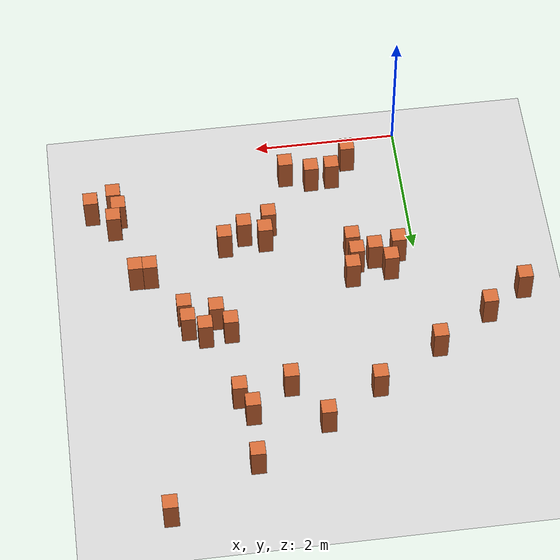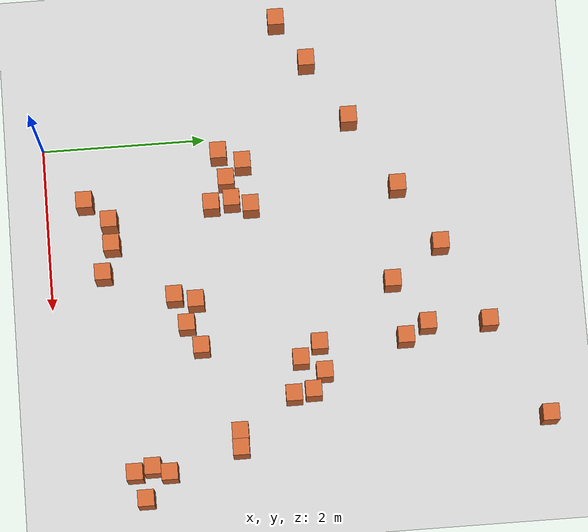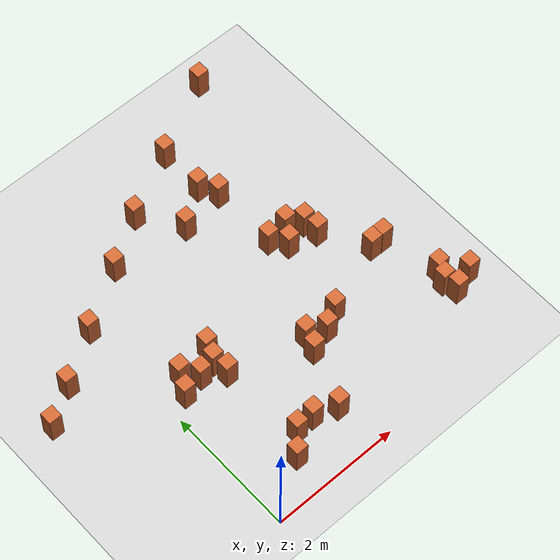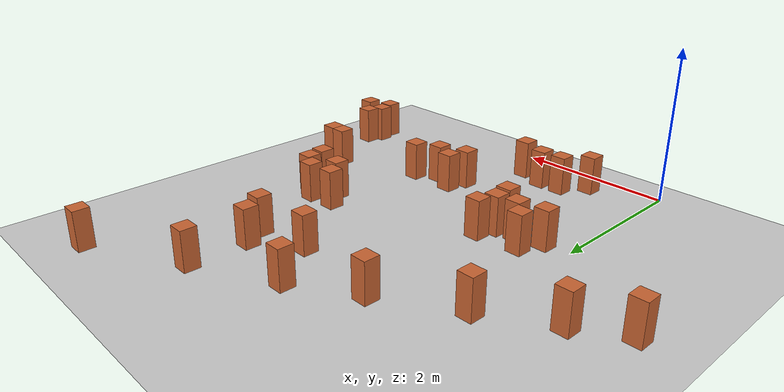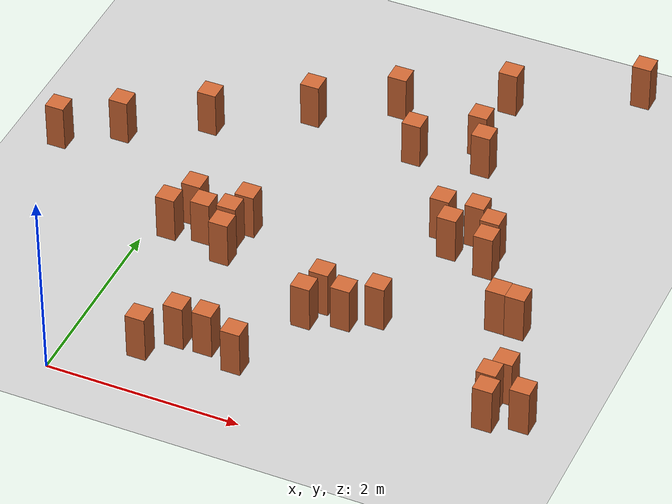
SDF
<sdf version="1.9">
 <world name="default">
  <model name="ground_plane">
   <static>true</static>
   <link name="link">
    <collision name="collision">
     <geometry><plane><normal>0 0 1</normal><size>100 100</size></plane></geometry>
     <surface><friction><ode><mu>100</mu><mu2>50</mu2></ode></friction></surface>
    </collision>
    <visual name="visual">
     <cast_shadows>false</cast_shadows>
     <geometry><plane><normal>0 0 1</normal><size>100 100</size></plane></geometry>
     <material>
      <ambient>0.6 0.6 0.6 1</ambient>
      <diffuse>0.8 0.8 0.8 1</diffuse>
      <specular>0.1 0.1 0.1 1</specular>
     </material>
    </visual>
    <inertial>
     <mass>1</mass>
     <inertia><ixx>1</ixx><ixy>0</ixy><ixz>0</ixz><iyy>1</iyy><iyz>0</iyz><izz>1</izz></inertia>
    </inertial>
   </link>
  </model>
  <model name="wood_cube_10cm_clone_0_clone_1">
   <link name="link">
    <pose>0 0 0.05 0 -0 0</pose>
    <inertial>
     <mass>0.51670000000000005</mass>
     <inertia>
      <ixx>0.00086116700000000003</ixx>
      <ixy>0</ixy>
      <ixz>0</ixz>
      <iyy>0.00086116700000000003</iyy>
      <iyz>0</iyz>
      <izz>0.00086116700000000003</izz>
     </inertia>
    </inertial>
    <collision name="collision">
     <geometry><box><size>0.2 0.2 0.5</size></box></geometry>
     <surface>
      <contact>
       <poissons_ratio>0.34699999999999998</poissons_ratio>
       <elastic_modulus>8800000000</elastic_modulus>
       <ode><kp>100000</kp><kd>100</kd><max_vel>100</max_vel><min_depth>0.001</min_depth></ode>
      </contact>
      <friction>
       <torsional>
        <coefficient>1</coefficient>
        <use_patch_radius>false</use_patch_radius>
        <surface_radius>0.01</surface_radius>
       </torsional>
      </friction>
     </surface>
    </collision>
    <visual name="visual">
     <geometry><box><size>0.2 0.2 0.5</size></box></geometry>
     <material>
      <ambient>0.6 0.3 0.1 1</ambient>
      <diffuse>0.8 0.4 0.2 1</diffuse>
      <specular>0.1 0.1 0.1 1</specular>
     </material>
    </visual>
   </link>
   <pose>1.30046 0.792033 0.25 0 0 -0</pose>
   <static>false</static>
  </model>
  <model name="wood_cube_10cm_clone_0_clone_2">
   <link name="link">
    <pose>0 0 0.05 0 -0 0</pose>
    <inertial>
     <mass>0.51670000000000005</mass>
     <inertia>
      <ixx>0.00086116700000000003</ixx>
      <ixy>0</ixy>
      <ixz>0</ixz>
      <iyy>0.00086116700000000003</iyy>
      <iyz>0</iyz>
      <izz>0.00086116700000000003</izz>
     </inertia>
    </inertial>
    <collision name="collision">
     <geometry><box><size>0.2 0.2 0.5</size></box></geometry>
     <surface>
      <contact>
       <poissons_ratio>0.34699999999999998</poissons_ratio>
       <elastic_modulus>8800000000</elastic_modulus>
       <ode><kp>100000</kp><kd>100</kd><max_vel>100</max_vel><min_depth>0.001</min_depth></ode>
      </contact>
      <friction>
       <torsional>
        <coefficient>1</coefficient>
        <use_patch_radius>false</use_patch_radius>
        <surface_radius>0.01</surface_radius>
       </torsional>
      </friction>
     </surface>
    </collision>
    <visual name="visual">
     <geometry><box><size>0.2 0.2 0.5</size></box></geometry>
     <material>
      <ambient>0.6 0.3 0.1 1</ambient>
      <diffuse>0.8 0.4 0.2 1</diffuse>
      <specular>0.1 0.1 0.1 1</specular>
     </material>
    </visual>
   </link>
   <pose>1.00724 0.77848 0.249999 0 -0 0</pose>
   <static>false</static>
  </model>
  <model name="wood_cube_10cm_clone_0_clone_4">
   <link name="link">
    <pose>0 0 0.05 0 -0 0</pose>
    <inertial>
     <mass>0.51670000000000005</mass>
     <inertia>
      <ixx>0.00086116700000000003</ixx>
      <ixy>0</ixy>
      <ixz>0</ixz>
      <iyy>0.00086116700000000003</iyy>
      <iyz>0</iyz>
      <izz>0.00086116700000000003</izz>
     </inertia>
    </inertial>
    <collision name="collision">
     <geometry><box><size>0.2 0.2 0.5</size></box></geometry>
     <surface>
      <contact>
       <poissons_ratio>0.34699999999999998</poissons_ratio>
       <elastic_modulus>8800000000</elastic_modulus>
       <ode><kp>100000</kp><kd>100</kd><max_vel>100</max_vel><min_depth>0.001</min_depth></ode>
      </contact>
      <friction>
       <torsional>
        <coefficient>1</coefficient>
        <use_patch_radius>false</use_patch_radius>
        <surface_radius>0.01</surface_radius>
       </torsional>
      </friction>
     </surface>
    </collision>
    <visual name="visual">
     <geometry><box><size>0.2 0.2 0.5</size></box></geometry>
     <material>
      <ambient>0.6 0.3 0.1 1</ambient>
      <diffuse>0.8 0.4 0.2 1</diffuse>
      <specular>0.1 0.1 0.1 1</specular>
     </material>
    </visual>
   </link>
   <pose>0.748848 0.49402 0.25 0 0 0</pose>
   <static>false</static>
  </model>
  <model name="wood_cube_10cm_clone_0_clone_5">
   <link name="link">
    <pose>0 0 0.05 0 -0 0</pose>
    <inertial>
     <mass>0.51670000000000005</mass>
     <inertia>
      <ixx>0.00086116700000000003</ixx>
      <ixy>0</ixy>
      <ixz>0</ixz>
      <iyy>0.00086116700000000003</iyy>
      <iyz>0</iyz>
      <izz>0.00086116700000000003</izz>
     </inertia>
    </inertial>
    <collision name="collision">
     <geometry><box><size>0.2 0.2 0.5</size></box></geometry>
     <surface>
      <contact>
       <poissons_ratio>0.34699999999999998</poissons_ratio>
       <elastic_modulus>8800000000</elastic_modulus>
       <ode><kp>100000</kp><kd>100</kd><max_vel>100</max_vel><min_depth>0.001</min_depth></ode>
      </contact>
      <friction>
       <torsional>
        <coefficient>1</coefficient>
        <use_patch_radius>false</use_patch_radius>
        <surface_radius>0.01</surface_radius>
       </torsional>
      </friction>
     </surface>
    </collision>
    <visual name="visual">
     <geometry><box><size>0.2 0.2 0.5</size></box></geometry>
     <material>
      <ambient>0.6 0.3 0.1 1</ambient>
      <diffuse>0.8 0.4 0.2 1</diffuse>
      <specular>0.1 0.1 0.1 1</specular>
     </material>
    </visual>
   </link>
   <pose>1.65238 0.667249 0.249999 0 0 0</pose>
   <static>false</static>
  </model>
  <model name="wood_cube_10cm_clone_0_clone_4_14">
   <link name="link">
    <pose>0 0 0.05 0 -0 0</pose>
    <inertial>
     <mass>0.51670000000000005</mass>
     <inertia>
      <ixx>0.00086116700000000003</ixx>
      <ixy>0</ixy>
      <ixz>0</ixz>
      <iyy>0.00086116700000000003</iyy>
      <iyz>0</iyz>
      <izz>0.00086116700000000003</izz>
     </inertia>
    </inertial>
    <collision name="collision">
     <geometry><box><size>0.2 0.2 0.5</size></box></geometry>
     <surface>
      <contact>
       <poissons_ratio>0.34699999999999998</poissons_ratio>
       <elastic_modulus>8800000000</elastic_modulus>
       <ode><kp>100000</kp><kd>100</kd><max_vel>100</max_vel><min_depth>0.001</min_depth></ode>
      </contact>
      <friction>
       <torsional>
        <coefficient>1</coefficient>
        <use_patch_radius>false</use_patch_radius>
        <surface_radius>0.01</surface_radius>
       </torsional>
      </friction>
     </surface>
    </collision>
    <visual name="visual">
     <geometry><box><size>0.2 0.2 0.5</size></box></geometry>
     <material>
      <ambient>0.6 0.3 0.1 1</ambient>
      <diffuse>0.8 0.4 0.2 1</diffuse>
      <specular>0.1 0.1 0.1 1</specular>
     </material>
    </visual>
   </link>
   <pose>2.63298 1.79794 0.249999 -0 0 -0</pose>
   <static>false</static>
  </model>
  <model name="wood_cube_10cm_clone_0_clone_4_15">
   <link name="link">
    <pose>0 0 0.05 0 -0 0</pose>
    <inertial>
     <mass>0.51670000000000005</mass>
     <inertia>
      <ixx>0.00086116700000000003</ixx>
      <ixy>0</ixy>
      <ixz>0</ixz>
      <iyy>0.00086116700000000003</iyy>
      <iyz>0</iyz>
      <izz>0.00086116700000000003</izz>
     </inertia>
    </inertial>
    <collision name="collision">
     <geometry><box><size>0.2 0.2 0.5</size></box></geometry>
     <surface>
      <contact>
       <poissons_ratio>0.34699999999999998</poissons_ratio>
       <elastic_modulus>8800000000</elastic_modulus>
       <ode><kp>100000</kp><kd>100</kd><max_vel>100</max_vel><min_depth>0.001</min_depth></ode>
      </contact>
      <friction>
       <torsional>
        <coefficient>1</coefficient>
        <use_patch_radius>false</use_patch_radius>
        <surface_radius>0.01</surface_radius>
       </torsional>
      </friction>
     </surface>
    </collision>
    <visual name="visual">
     <geometry><box><size>0.2 0.2 0.5</size></box></geometry>
     <material>
      <ambient>0.6 0.3 0.1 1</ambient>
      <diffuse>0.8 0.4 0.2 1</diffuse>
      <specular>0.1 0.1 0.1 1</specular>
     </material>
    </visual>
   </link>
   <pose>2.34569 1.63991 0.249999 -0 0 -0</pose>
   <static>false</static>
  </model>
  <model name="wood_cube_10cm_clone_0_clone_4_16">
   <link name="link">
    <pose>0 0 0.05 0 -0 0</pose>
    <inertial>
     <mass>0.51670000000000005</mass>
     <inertia>
      <ixx>0.00086116700000000003</ixx>
      <ixy>0</ixy>
      <ixz>0</ixz>
      <iyy>0.00086116700000000003</iyy>
      <iyz>0</iyz>
      <izz>0.00086116700000000003</izz>
     </inertia>
    </inertial>
    <collision name="collision">
     <geometry><box><size>0.2 0.2 0.5</size></box></geometry>
     <surface>
      <contact>
       <poissons_ratio>0.34699999999999998</poissons_ratio>
       <elastic_modulus>8800000000</elastic_modulus>
       <ode><kp>100000</kp><kd>100</kd><max_vel>100</max_vel><min_depth>0.001</min_depth></ode>
      </contact>
      <friction>
       <torsional>
        <coefficient>1</coefficient>
        <use_patch_radius>false</use_patch_radius>
        <surface_radius>0.01</surface_radius>
       </torsional>
      </friction>
     </surface>
    </collision>
    <visual name="visual">
     <geometry><box><size>0.2 0.2 0.5</size></box></geometry>
     <material>
      <ambient>0.6 0.3 0.1 1</ambient>
      <diffuse>0.8 0.4 0.2 1</diffuse>
      <specular>0.1 0.1 0.1 1</specular>
     </material>
    </visual>
   </link>
   <pose>2.06317 1.76945 0.249999 -0 0 -0</pose>
   <static>false</static>
  </model>
  <model name="wood_cube_10cm_clone_0_clone_4_17">
   <link name="link">
    <pose>0 0 0.05 0 -0 0</pose>
    <inertial>
     <mass>0.51670000000000005</mass>
     <inertia>
      <ixx>0.00086116700000000003</ixx>
      <ixy>0</ixy>
      <ixz>0</ixz>
      <iyy>0.00086116700000000003</iyy>
      <iyz>0</iyz>
      <izz>0.00086116700000000003</izz>
     </inertia>
    </inertial>
    <collision name="collision">
     <geometry><box><size>0.2 0.2 0.5</size></box></geometry>
     <surface>
      <contact>
       <poissons_ratio>0.34699999999999998</poissons_ratio>
       <elastic_modulus>8800000000</elastic_modulus>
       <ode><kp>100000</kp><kd>100</kd><max_vel>100</max_vel><min_depth>0.001</min_depth></ode>
      </contact>
      <friction>
       <torsional>
        <coefficient>1</coefficient>
        <use_patch_radius>false</use_patch_radius>
        <surface_radius>0.01</surface_radius>
       </torsional>
      </friction>
     </surface>
    </collision>
    <visual name="visual">
     <geometry><box><size>0.2 0.2 0.5</size></box></geometry>
     <material>
      <ambient>0.6 0.3 0.1 1</ambient>
      <diffuse>0.8 0.4 0.2 1</diffuse>
      <specular>0.1 0.1 0.1 1</specular>
     </material>
    </visual>
   </link>
   <pose>1.98706 1.51306 0.249999 -0 0 -0</pose>
   <static>false</static>
  </model>
  <model name="wood_cube_10cm_clone_0_clone_4_18">
   <link name="link">
    <pose>0 0 0.05 0 -0 0</pose>
    <inertial>
     <mass>0.51670000000000005</mass>
     <inertia>
      <ixx>0.00086116700000000003</ixx>
      <ixy>0</ixy>
      <ixz>0</ixz>
      <iyy>0.00086116700000000003</iyy>
      <iyz>0</iyz>
      <izz>0.00086116700000000003</izz>
     </inertia>
    </inertial>
    <collision name="collision">
     <geometry><box><size>0.2 0.2 0.5</size></box></geometry>
     <surface>
      <contact>
       <poissons_ratio>0.34699999999999998</poissons_ratio>
       <elastic_modulus>8800000000</elastic_modulus>
       <ode><kp>100000</kp><kd>100</kd><max_vel>100</max_vel><min_depth>0.001</min_depth></ode>
      </contact>
      <friction>
       <torsional>
        <coefficient>1</coefficient>
        <use_patch_radius>false</use_patch_radius>
        <surface_radius>0.01</surface_radius>
       </torsional>
      </friction>
     </surface>
    </collision>
    <visual name="visual">
     <geometry><box><size>0.2 0.2 0.5</size></box></geometry>
     <material>
      <ambient>0.6 0.3 0.1 1</ambient>
      <diffuse>0.8 0.4 0.2 1</diffuse>
      <specular>0.1 0.1 0.1 1</specular>
     </material>
    </visual>
   </link>
   <pose>4.05339 1.11591 0.25 0 -0 -8e-06</pose>
   <static>false</static>
  </model>
  <model name="wood_cube_10cm_clone_0_clone_4_19">
   <link name="link">
    <pose>0 0 0.05 0 -0 0</pose>
    <inertial>
     <mass>0.51670000000000005</mass>
     <inertia>
      <ixx>0.00086116700000000003</ixx>
      <ixy>0</ixy>
      <ixz>0</ixz>
      <iyy>0.00086116700000000003</iyy>
      <iyz>0</iyz>
      <izz>0.00086116700000000003</izz>
     </inertia>
    </inertial>
    <collision name="collision">
     <geometry><box><size>0.2 0.2 0.5</size></box></geometry>
     <surface>
      <contact>
       <poissons_ratio>0.34699999999999998</poissons_ratio>
       <elastic_modulus>8800000000</elastic_modulus>
       <ode><kp>100000</kp><kd>100</kd><max_vel>100</max_vel><min_depth>0.001</min_depth></ode>
      </contact>
      <friction>
       <torsional>
        <coefficient>1</coefficient>
        <use_patch_radius>false</use_patch_radius>
        <surface_radius>0.01</surface_radius>
       </torsional>
      </friction>
     </surface>
    </collision>
    <visual name="visual">
     <geometry><box><size>0.2 0.2 0.5</size></box></geometry>
     <material>
      <ambient>0.6 0.3 0.1 1</ambient>
      <diffuse>0.8 0.4 0.2 1</diffuse>
      <specular>0.1 0.1 0.1 1</specular>
     </material>
    </visual>
   </link>
   <pose>4.4321 1.01298 0.249999 -0 -0 -0</pose>
   <static>false</static>
  </model>
  <model name="wood_cube_10cm_clone_0_clone_4_20">
   <link name="link">
    <pose>0 0 0.05 0 -0 0</pose>
    <inertial>
     <mass>0.51670000000000005</mass>
     <inertia>
      <ixx>0.00086116700000000003</ixx>
      <ixy>0</ixy>
      <ixz>0</ixz>
      <iyy>0.00086116700000000003</iyy>
      <iyz>0</iyz>
      <izz>0.00086116700000000003</izz>
     </inertia>
    </inertial>
    <collision name="collision">
     <geometry><box><size>0.2 0.2 0.5</size></box></geometry>
     <surface>
      <contact>
       <poissons_ratio>0.34699999999999998</poissons_ratio>
       <elastic_modulus>8800000000</elastic_modulus>
       <ode><kp>100000</kp><kd>100</kd><max_vel>100</max_vel><min_depth>0.001</min_depth></ode>
      </contact>
      <friction>
       <torsional>
        <coefficient>1</coefficient>
        <use_patch_radius>false</use_patch_radius>
        <surface_radius>0.01</surface_radius>
       </torsional>
      </friction>
     </surface>
    </collision>
    <visual name="visual">
     <geometry><box><size>0.2 0.2 0.5</size></box></geometry>
     <material>
      <ambient>0.6 0.3 0.1 1</ambient>
      <diffuse>0.8 0.4 0.2 1</diffuse>
      <specular>0.1 0.1 0.1 1</specular>
     </material>
    </visual>
   </link>
   <pose>4.109 0.897253 0.249999 -0 -0 -0</pose>
   <static>false</static>
  </model>
  <model name="wood_cube_10cm_clone_0_clone_4_22">
   <link name="link">
    <pose>0 0 0.05 0 -0 0</pose>
    <inertial>
     <mass>0.51670000000000005</mass>
     <inertia>
      <ixx>0.00086116700000000003</ixx>
      <ixy>0</ixy>
      <ixz>0</ixz>
      <iyy>0.00086116700000000003</iyy>
      <iyz>0</iyz>
      <izz>0.00086116700000000003</izz>
     </inertia>
    </inertial>
    <collision name="collision">
     <geometry><box><size>0.2 0.2 0.5</size></box></geometry>
     <surface>
      <contact>
       <poissons_ratio>0.34699999999999998</poissons_ratio>
       <elastic_modulus>8800000000</elastic_modulus>
       <ode><kp>100000</kp><kd>100</kd><max_vel>100</max_vel><min_depth>0.001</min_depth></ode>
      </contact>
      <friction>
       <torsional>
        <coefficient>1</coefficient>
        <use_patch_radius>false</use_patch_radius>
        <surface_radius>0.01</surface_radius>
       </torsional>
      </friction>
     </surface>
    </collision>
    <visual name="visual">
     <geometry><box><size>0.2 0.2 0.5</size></box></geometry>
     <material>
      <ambient>0.6 0.3 0.1 1</ambient>
      <diffuse>0.8 0.4 0.2 1</diffuse>
      <specular>0.1 0.1 0.1 1</specular>
     </material>
    </visual>
   </link>
   <pose>4.13615 1.31591 0.25 -0 0 -7e-06</pose>
   <static>false</static>
  </model>
  <model name="wood_cube_10cm_clone_0_clone_4_46">
   <link name="link">
    <pose>0 0 0.05 0 -0 0</pose>
    <inertial>
     <mass>0.51670000000000005</mass>
     <inertia>
      <ixx>0.00086116700000000003</ixx>
      <ixy>0</ixy>
      <ixz>0</ixz>
      <iyy>0.00086116700000000003</iyy>
      <iyz>0</iyz>
      <izz>0.00086116700000000003</izz>
     </inertia>
    </inertial>
    <collision name="collision">
     <geometry><box><size>0.2 0.2 0.5</size></box></geometry>
     <surface>
      <contact>
       <poissons_ratio>0.34699999999999998</poissons_ratio>
       <elastic_modulus>8800000000</elastic_modulus>
       <ode><kp>100000</kp><kd>100</kd><max_vel>100</max_vel><min_depth>0.001</min_depth></ode>
      </contact>
      <friction>
       <torsional>
        <coefficient>1</coefficient>
        <use_patch_radius>false</use_patch_radius>
        <surface_radius>0.01</surface_radius>
       </torsional>
      </friction>
     </surface>
    </collision>
    <visual name="visual">
     <geometry><box><size>0.2 0.2 0.5</size></box></geometry>
     <material>
      <ambient>0.6 0.3 0.1 1</ambient>
      <diffuse>0.8 0.4 0.2 1</diffuse>
      <specular>0.1 0.1 0.1 1</specular>
     </material>
    </visual>
   </link>
   <pose>0.851003 2.28651 0.249999 0 -0 -0</pose>
   <static>false</static>
  </model>
  <model name="wood_cube_10cm_clone_0_clone_4_47">
   <link name="link">
    <pose>0 0 0.05 0 -0 0</pose>
    <inertial>
     <mass>0.51670000000000005</mass>
     <inertia>
      <ixx>0.00086116700000000003</ixx>
      <ixy>0</ixy>
      <ixz>0</ixz>
      <iyy>0.00086116700000000003</iyy>
      <iyz>0</iyz>
      <izz>0.00086116700000000003</izz>
     </inertia>
    </inertial>
    <collision name="collision">
     <geometry><box><size>0.2 0.2 0.5</size></box></geometry>
     <surface>
      <contact>
       <poissons_ratio>0.34699999999999998</poissons_ratio>
       <elastic_modulus>8800000000</elastic_modulus>
       <ode><kp>100000</kp><kd>100</kd><max_vel>100</max_vel><min_depth>0.001</min_depth></ode>
      </contact>
      <friction>
       <torsional>
        <coefficient>1</coefficient>
        <use_patch_radius>false</use_patch_radius>
        <surface_radius>0.01</surface_radius>
       </torsional>
      </friction>
     </surface>
    </collision>
    <visual name="visual">
     <geometry><box><size>0.2 0.2 0.5</size></box></geometry>
     <material>
      <ambient>0.6 0.3 0.1 1</ambient>
      <diffuse>0.8 0.4 0.2 1</diffuse>
      <specular>0.1 0.1 0.1 1</specular>
     </material>
    </visual>
   </link>
   <pose>0.591517 2.23791 0.249999 0 0 -0</pose>
   <static>false</static>
  </model>
  <model name="wood_cube_10cm_clone_0_clone_4_48">
   <link name="link">
    <pose>0 0 0.05 0 -0 0</pose>
    <inertial>
     <mass>0.51670000000000005</mass>
     <inertia>
      <ixx>0.00086116700000000003</ixx>
      <ixy>0</ixy>
      <ixz>0</ixz>
      <iyy>0.00086116700000000003</iyy>
      <iyz>0</iyz>
      <izz>0.00086116700000000003</izz>
     </inertia>
    </inertial>
    <collision name="collision">
     <geometry><box><size>0.2 0.2 0.5</size></box></geometry>
     <surface>
      <contact>
       <poissons_ratio>0.34699999999999998</poissons_ratio>
       <elastic_modulus>8800000000</elastic_modulus>
       <ode><kp>100000</kp><kd>100</kd><max_vel>100</max_vel><min_depth>0.001</min_depth></ode>
      </contact>
      <friction>
       <torsional>
        <coefficient>1</coefficient>
        <use_patch_radius>false</use_patch_radius>
        <surface_radius>0.01</surface_radius>
       </torsional>
      </friction>
     </surface>
    </collision>
    <visual name="visual">
     <geometry><box><size>0.2 0.2 0.5</size></box></geometry>
     <material>
      <ambient>0.6 0.3 0.1 1</ambient>
      <diffuse>0.8 0.4 0.2 1</diffuse>
      <specular>0.1 0.1 0.1 1</specular>
     </material>
    </visual>
   </link>
   <pose>0.883771 2.03562 0.249999 0 -0 -0</pose>
   <static>false</static>
  </model>
  <model name="wood_cube_10cm_clone_0_clone_4_49">
   <link name="link">
    <pose>0 0 0.05 0 -0 0</pose>
    <inertial>
     <mass>0.51670000000000005</mass>
     <inertia>
      <ixx>0.00086116700000000003</ixx>
      <ixy>0</ixy>
      <ixz>0</ixz>
      <iyy>0.00086116700000000003</iyy>
      <iyz>0</iyz>
      <izz>0.00086116700000000003</izz>
     </inertia>
    </inertial>
    <collision name="collision">
     <geometry><box><size>0.2 0.2 0.5</size></box></geometry>
     <surface>
      <contact>
       <poissons_ratio>0.34699999999999998</poissons_ratio>
       <elastic_modulus>8800000000</elastic_modulus>
       <ode><kp>100000</kp><kd>100</kd><max_vel>100</max_vel><min_depth>0.001</min_depth></ode>
      </contact>
      <friction>
       <torsional>
        <coefficient>1</coefficient>
        <use_patch_radius>false</use_patch_radius>
        <surface_radius>0.01</surface_radius>
       </torsional>
      </friction>
     </surface>
    </collision>
    <visual name="visual">
     <geometry><box><size>0.2 0.2 0.5</size></box></geometry>
     <material>
      <ambient>0.6 0.3 0.1 1</ambient>
      <diffuse>0.8 0.4 0.2 1</diffuse>
      <specular>0.1 0.1 0.1 1</specular>
     </material>
    </visual>
   </link>
   <pose>0.251594 2.16555 0.249999 0 -0 -0</pose>
   <static>false</static>
  </model>
  <model name="wood_cube_10cm_clone_0_clone_4_50">
   <link name="link">
    <pose>0 0 0.05 0 -0 0</pose>
    <inertial>
     <mass>0.51670000000000005</mass>
     <inertia>
      <ixx>0.00086116700000000003</ixx>
      <ixy>0</ixy>
      <ixz>0</ixz>
      <iyy>0.00086116700000000003</iyy>
      <iyz>0</iyz>
      <izz>0.00086116700000000003</izz>
     </inertia>
    </inertial>
    <collision name="collision">
     <geometry><box><size>0.2 0.2 0.5</size></box></geometry>
     <surface>
      <contact>
       <poissons_ratio>0.34699999999999998</poissons_ratio>
       <elastic_modulus>8800000000</elastic_modulus>
       <ode><kp>100000</kp><kd>100</kd><max_vel>100</max_vel><min_depth>0.001</min_depth></ode>
      </contact>
      <friction>
       <torsional>
        <coefficient>1</coefficient>
        <use_patch_radius>false</use_patch_radius>
        <surface_radius>0.01</surface_radius>
       </torsional>
      </friction>
     </surface>
    </collision>
    <visual name="visual">
     <geometry><box><size>0.2 0.2 0.5</size></box></geometry>
     <material>
      <ambient>0.6 0.3 0.1 1</ambient>
      <diffuse>0.8 0.4 0.2 1</diffuse>
      <specular>0.1 0.1 0.1 1</specular>
     </material>
    </visual>
   </link>
   <pose>0.394325 2.45351 0.249999 0 -0 -0</pose>
   <static>false</static>
  </model>
  <model name="wood_cube_10cm_clone_0_clone_4_51">
   <link name="link">
    <pose>0 0 0.05 0 -0 0</pose>
    <inertial>
     <mass>0.51670000000000005</mass>
     <inertia>
      <ixx>0.00086116700000000003</ixx>
      <ixy>0</ixy>
      <ixz>0</ixz>
      <iyy>0.00086116700000000003</iyy>
      <iyz>0</iyz>
      <izz>0.00086116700000000003</izz>
     </inertia>
    </inertial>
    <collision name="collision">
     <geometry><box><size>0.2 0.2 0.5</size></box></geometry>
     <surface>
      <contact>
       <poissons_ratio>0.34699999999999998</poissons_ratio>
       <elastic_modulus>8800000000</elastic_modulus>
       <ode><kp>100000</kp><kd>100</kd><max_vel>100</max_vel><min_depth>0.001</min_depth></ode>
      </contact>
      <friction>
       <torsional>
        <coefficient>1</coefficient>
        <use_patch_radius>false</use_patch_radius>
        <surface_radius>0.01</surface_radius>
       </torsional>
      </friction>
     </surface>
    </collision>
    <visual name="visual">
     <geometry><box><size>0.2 0.2 0.5</size></box></geometry>
     <material>
      <ambient>0.6 0.3 0.1 1</ambient>
      <diffuse>0.8 0.4 0.2 1</diffuse>
      <specular>0.1 0.1 0.1 1</specular>
     </material>
    </visual>
   </link>
   <pose>0.936904 2.51662 0.249999 -0 0 -0</pose>
   <static>false</static>
  </model>
  <model name="wood_cube_10cm_clone_0_clone_4_52">
   <link name="link">
    <pose>0 0 0.05 0 -0 0</pose>
    <inertial>
     <mass>0.51670000000000005</mass>
     <inertia>
      <ixx>0.00086116700000000003</ixx>
      <ixy>0</ixy>
      <ixz>0</ixz>
      <iyy>0.00086116700000000003</iyy>
      <iyz>0</iyz>
      <izz>0.00086116700000000003</izz>
     </inertia>
    </inertial>
    <collision name="collision">
     <geometry><box><size>0.2 0.2 0.5</size></box></geometry>
     <surface>
      <contact>
       <poissons_ratio>0.34699999999999998</poissons_ratio>
       <elastic_modulus>8800000000</elastic_modulus>
       <ode><kp>100000</kp><kd>100</kd><max_vel>100</max_vel><min_depth>0.001</min_depth></ode>
      </contact>
      <friction>
       <torsional>
        <coefficient>1</coefficient>
        <use_patch_radius>false</use_patch_radius>
        <surface_radius>0.01</surface_radius>
       </torsional>
      </friction>
     </surface>
    </collision>
    <visual name="visual">
     <geometry><box><size>0.2 0.2 0.5</size></box></geometry>
     <material>
      <ambient>0.6 0.3 0.1 1</ambient>
      <diffuse>0.8 0.4 0.2 1</diffuse>
      <specular>0.1 0.1 0.1 1</specular>
     </material>
    </visual>
   </link>
   <pose>3.26592 3.1135 0.249999 -0 0 -0</pose>
   <static>false</static>
  </model>
  <model name="wood_cube_10cm_clone_0_clone_4_53">
   <link name="link">
    <pose>0 0 0.05 0 -0 0</pose>
    <inertial>
     <mass>0.51670000000000005</mass>
     <inertia>
      <ixx>0.00086116700000000003</ixx>
      <ixy>0</ixy>
      <ixz>0</ixz>
      <iyy>0.00086116700000000003</iyy>
      <iyz>0</iyz>
      <izz>0.00086116700000000003</izz>
     </inertia>
    </inertial>
    <collision name="collision">
     <geometry><box><size>0.2 0.2 0.5</size></box></geometry>
     <surface>
      <contact>
       <poissons_ratio>0.34699999999999998</poissons_ratio>
       <elastic_modulus>8800000000</elastic_modulus>
       <ode><kp>100000</kp><kd>100</kd><max_vel>100</max_vel><min_depth>0.001</min_depth></ode>
      </contact>
      <friction>
       <torsional>
        <coefficient>1</coefficient>
        <use_patch_radius>false</use_patch_radius>
        <surface_radius>0.01</surface_radius>
       </torsional>
      </friction>
     </surface>
    </collision>
    <visual name="visual">
     <geometry><box><size>0.2 0.2 0.5</size></box></geometry>
     <material>
      <ambient>0.6 0.3 0.1 1</ambient>
      <diffuse>0.8 0.4 0.2 1</diffuse>
      <specular>0.1 0.1 0.1 1</specular>
     </material>
    </visual>
   </link>
   <pose>3.04552 3.2644 0.249999 -0 0 -0</pose>
   <static>false</static>
  </model>
  <model name="wood_cube_10cm_clone_0_clone_4_54">
   <link name="link">
    <pose>0 0 0.05 0 -0 0</pose>
    <inertial>
     <mass>0.51670000000000005</mass>
     <inertia>
      <ixx>0.00086116700000000003</ixx>
      <ixy>0</ixy>
      <ixz>0</ixz>
      <iyy>0.00086116700000000003</iyy>
      <iyz>0</iyz>
      <izz>0.00086116700000000003</izz>
     </inertia>
    </inertial>
    <collision name="collision">
     <geometry><box><size>0.2 0.2 0.5</size></box></geometry>
     <surface>
      <contact>
       <poissons_ratio>0.34699999999999998</poissons_ratio>
       <elastic_modulus>8800000000</elastic_modulus>
       <ode><kp>100000</kp><kd>100</kd><max_vel>100</max_vel><min_depth>0.001</min_depth></ode>
      </contact>
      <friction>
       <torsional>
        <coefficient>1</coefficient>
        <use_patch_radius>false</use_patch_radius>
        <surface_radius>0.01</surface_radius>
       </torsional>
      </friction>
     </surface>
    </collision>
    <visual name="visual">
     <geometry><box><size>0.2 0.2 0.5</size></box></geometry>
     <material>
      <ambient>0.6 0.3 0.1 1</ambient>
      <diffuse>0.8 0.4 0.2 1</diffuse>
      <specular>0.1 0.1 0.1 1</specular>
     </material>
    </visual>
   </link>
   <pose>2.86828 2.98839 0.249999 -0 0 -0</pose>
   <static>false</static>
  </model>
  <model name="wood_cube_10cm_clone_0_clone_4_55">
   <link name="link">
    <pose>0 0 0.05 0 -0 0</pose>
    <inertial>
     <mass>0.51670000000000005</mass>
     <inertia>
      <ixx>0.00086116700000000003</ixx>
      <ixy>0</ixy>
      <ixz>0</ixz>
      <iyy>0.00086116700000000003</iyy>
      <iyz>0</iyz>
      <izz>0.00086116700000000003</izz>
     </inertia>
    </inertial>
    <collision name="collision">
     <geometry><box><size>0.2 0.2 0.5</size></box></geometry>
     <surface>
      <contact>
       <poissons_ratio>0.34699999999999998</poissons_ratio>
       <elastic_modulus>8800000000</elastic_modulus>
       <ode><kp>100000</kp><kd>100</kd><max_vel>100</max_vel><min_depth>0.001</min_depth></ode>
      </contact>
      <friction>
       <torsional>
        <coefficient>1</coefficient>
        <use_patch_radius>false</use_patch_radius>
        <surface_radius>0.01</surface_radius>
       </torsional>
      </friction>
     </surface>
    </collision>
    <visual name="visual">
     <geometry><box><size>0.2 0.2 0.5</size></box></geometry>
     <material>
      <ambient>0.6 0.3 0.1 1</ambient>
      <diffuse>0.8 0.4 0.2 1</diffuse>
      <specular>0.1 0.1 0.1 1</specular>
     </material>
    </visual>
   </link>
   <pose>2.69498 3.22724 0.249999 -0 0 -0</pose>
   <static>false</static>
  </model>
  <model name="wood_cube_10cm_clone_0_clone_4_56">
   <link name="link">
    <pose>0 0 0.05 0 -0 0</pose>
    <inertial>
     <mass>0.51670000000000005</mass>
     <inertia>
      <ixx>0.00086116700000000003</ixx>
      <ixy>0</ixy>
      <ixz>0</ixz>
      <iyy>0.00086116700000000003</iyy>
      <iyz>0</iyz>
      <izz>0.00086116700000000003</izz>
     </inertia>
    </inertial>
    <collision name="collision">
     <geometry><box><size>0.2 0.2 0.5</size></box></geometry>
     <surface>
      <contact>
       <poissons_ratio>0.34699999999999998</poissons_ratio>
       <elastic_modulus>8800000000</elastic_modulus>
       <ode><kp>100000</kp><kd>100</kd><max_vel>100</max_vel><min_depth>0.001</min_depth></ode>
      </contact>
      <friction>
       <torsional>
        <coefficient>1</coefficient>
        <use_patch_radius>false</use_patch_radius>
        <surface_radius>0.01</surface_radius>
       </torsional>
      </friction>
     </surface>
    </collision>
    <visual name="visual">
     <geometry><box><size>0.2 0.2 0.5</size></box></geometry>
     <material>
      <ambient>0.6 0.3 0.1 1</ambient>
      <diffuse>0.8 0.4 0.2 1</diffuse>
      <specular>0.1 0.1 0.1 1</specular>
     </material>
    </visual>
   </link>
   <pose>3.29722 2.87551 0.249999 -0 0 -0</pose>
   <static>false</static>
  </model>
  <model name="wood_cube_10cm_clone_0_clone_4_44_7">
   <link name="link">
    <pose>0 0 0.05 0 -0 0</pose>
    <inertial>
     <mass>0.51670000000000005</mass>
     <inertia>
      <ixx>0.00086116700000000003</ixx>
      <ixy>0</ixy>
      <ixz>0</ixz>
      <iyy>0.00086116700000000003</iyy>
      <iyz>0</iyz>
      <izz>0.00086116700000000003</izz>
     </inertia>
    </inertial>
    <collision name="collision">
     <geometry><box><size>0.2 0.2 0.5</size></box></geometry>
     <surface>
      <contact>
       <poissons_ratio>0.34699999999999998</poissons_ratio>
       <elastic_modulus>8800000000</elastic_modulus>
       <ode><kp>100000</kp><kd>100</kd><max_vel>100</max_vel><min_depth>0.001</min_depth></ode>
      </contact>
      <friction>
       <torsional>
        <coefficient>1</coefficient>
        <use_patch_radius>false</use_patch_radius>
        <surface_radius>0.01</surface_radius>
       </torsional>
      </friction>
     </surface>
    </collision>
    <visual name="visual">
     <geometry><box><size>0.2 0.2 0.5</size></box></geometry>
     <material>
      <ambient>0.6 0.3 0.1 1</ambient>
      <diffuse>0.8 0.4 0.2 1</diffuse>
      <specular>0.1 0.1 0.1 1</specular>
     </material>
    </visual>
   </link>
   <pose>-1.37026 2.98855 0.249999 -0 -0 -0</pose>
   <static>false</static>
  </model>
  <model name="wood_cube_10cm_clone_0_clone_4_44_8">
   <link name="link">
    <pose>0 0 0.05 0 -0 0</pose>
    <inertial>
     <mass>0.51670000000000005</mass>
     <inertia>
      <ixx>0.00086116700000000003</ixx>
      <ixy>0</ixy>
      <ixz>0</ixz>
      <iyy>0.00086116700000000003</iyy>
      <iyz>0</iyz>
      <izz>0.00086116700000000003</izz>
     </inertia>
    </inertial>
    <collision name="collision">
     <geometry><box><size>0.2 0.2 0.5</size></box></geometry>
     <surface>
      <contact>
       <poissons_ratio>0.34699999999999998</poissons_ratio>
       <elastic_modulus>8800000000</elastic_modulus>
       <ode><kp>100000</kp><kd>100</kd><max_vel>100</max_vel><min_depth>0.001</min_depth></ode>
      </contact>
      <friction>
       <torsional>
        <coefficient>1</coefficient>
        <use_patch_radius>false</use_patch_radius>
        <surface_radius>0.01</surface_radius>
       </torsional>
      </friction>
     </surface>
    </collision>
    <visual name="visual">
     <geometry><box><size>0.2 0.2 0.5</size></box></geometry>
     <material>
      <ambient>0.6 0.3 0.1 1</ambient>
      <diffuse>0.8 0.4 0.2 1</diffuse>
      <specular>0.1 0.1 0.1 1</specular>
     </material>
    </visual>
   </link>
   <pose>-0.831275 3.32597 0.249999 0 -0 0</pose>
   <static>false</static>
  </model>
  <model name="wood_cube_10cm_clone_0_clone_4_44_9">
   <link name="link">
    <pose>0 0 0.05 0 -0 0</pose>
    <inertial>
     <mass>0.51670000000000005</mass>
     <inertia>
      <ixx>0.00086116700000000003</ixx>
      <ixy>0</ixy>
      <ixz>0</ixz>
      <iyy>0.00086116700000000003</iyy>
      <iyz>0</iyz>
      <izz>0.00086116700000000003</izz>
     </inertia>
    </inertial>
    <collision name="collision">
     <geometry><box><size>0.2 0.2 0.5</size></box></geometry>
     <surface>
      <contact>
       <poissons_ratio>0.34699999999999998</poissons_ratio>
       <elastic_modulus>8800000000</elastic_modulus>
       <ode><kp>100000</kp><kd>100</kd><max_vel>100</max_vel><min_depth>0.001</min_depth></ode>
      </contact>
      <friction>
       <torsional>
        <coefficient>1</coefficient>
        <use_patch_radius>false</use_patch_radius>
        <surface_radius>0.01</surface_radius>
       </torsional>
      </friction>
     </surface>
    </collision>
    <visual name="visual">
     <geometry><box><size>0.2 0.2 0.5</size></box></geometry>
     <material>
      <ambient>0.6 0.3 0.1 1</ambient>
      <diffuse>0.8 0.4 0.2 1</diffuse>
      <specular>0.1 0.1 0.1 1</specular>
     </material>
    </visual>
   </link>
   <pose>-0.075502 3.79145 0.249999 -0 -0 0</pose>
   <static>false</static>
  </model>
  <model name="wood_cube_10cm_clone_0_clone_4_44_10">
   <link name="link">
    <pose>0 0 0.05 0 -0 0</pose>
    <inertial>
     <mass>0.51670000000000005</mass>
     <inertia>
      <ixx>0.00086116700000000003</ixx>
      <ixy>0</ixy>
      <ixz>0</ixz>
      <iyy>0.00086116700000000003</iyy>
      <iyz>0</iyz>
      <izz>0.00086116700000000003</izz>
     </inertia>
    </inertial>
    <collision name="collision">
     <geometry><box><size>0.2 0.2 0.5</size></box></geometry>
     <surface>
      <contact>
       <poissons_ratio>0.34699999999999998</poissons_ratio>
       <elastic_modulus>8800000000</elastic_modulus>
       <ode><kp>100000</kp><kd>100</kd><max_vel>100</max_vel><min_depth>0.001</min_depth></ode>
      </contact>
      <friction>
       <torsional>
        <coefficient>1</coefficient>
        <use_patch_radius>false</use_patch_radius>
        <surface_radius>0.01</surface_radius>
       </torsional>
      </friction>
     </surface>
    </collision>
    <visual name="visual">
     <geometry><box><size>0.2 0.2 0.5</size></box></geometry>
     <material>
      <ambient>0.6 0.3 0.1 1</ambient>
      <diffuse>0.8 0.4 0.2 1</diffuse>
      <specular>0.1 0.1 0.1 1</specular>
     </material>
    </visual>
   </link>
   <pose>0.81582 4.32421 0.249999 -0 -0 0</pose>
   <static>false</static>
  </model>
  <model name="wood_cube_10cm_clone_0_clone_4_44_11">
   <link name="link">
    <pose>0 0 0.05 0 -0 0</pose>
    <inertial>
     <mass>0.51670000000000005</mass>
     <inertia>
      <ixx>0.00086116700000000003</ixx>
      <ixy>0</ixy>
      <ixz>0</ixz>
      <iyy>0.00086116700000000003</iyy>
      <iyz>0</iyz>
      <izz>0.00086116700000000003</izz>
     </inertia>
    </inertial>
    <collision name="collision">
     <geometry><box><size>0.2 0.2 0.5</size></box></geometry>
     <surface>
      <contact>
       <poissons_ratio>0.34699999999999998</poissons_ratio>
       <elastic_modulus>8800000000</elastic_modulus>
       <ode><kp>100000</kp><kd>100</kd><max_vel>100</max_vel><min_depth>0.001</min_depth></ode>
      </contact>
      <friction>
       <torsional>
        <coefficient>1</coefficient>
        <use_patch_radius>false</use_patch_radius>
        <surface_radius>0.01</surface_radius>
       </torsional>
      </friction>
     </surface>
    </collision>
    <visual name="visual">
     <geometry><box><size>0.2 0.2 0.5</size></box></geometry>
     <material>
      <ambient>0.6 0.3 0.1 1</ambient>
      <diffuse>0.8 0.4 0.2 1</diffuse>
      <specular>0.1 0.1 0.1 1</specular>
     </material>
    </visual>
   </link>
   <pose>1.57096 4.78906 0.249999 -0 -0 -0</pose>
   <static>false</static>
  </model>
  <model name="wood_cube_10cm_clone_0_clone_4_44_12">
   <link name="link">
    <pose>0 0 0.05 0 -0 0</pose>
    <inertial>
     <mass>0.51670000000000005</mass>
     <inertia>
      <ixx>0.00086116700000000003</ixx>
      <ixy>0</ixy>
      <ixz>0</ixz>
      <iyy>0.00086116700000000003</iyy>
      <iyz>0</iyz>
      <izz>0.00086116700000000003</izz>
     </inertia>
    </inertial>
    <collision name="collision">
     <geometry><box><size>0.2 0.2 0.5</size></box></geometry>
     <surface>
      <contact>
       <poissons_ratio>0.34699999999999998</poissons_ratio>
       <elastic_modulus>8800000000</elastic_modulus>
       <ode><kp>100000</kp><kd>100</kd><max_vel>100</max_vel><min_depth>0.001</min_depth></ode>
      </contact>
      <friction>
       <torsional>
        <coefficient>1</coefficient>
        <use_patch_radius>false</use_patch_radius>
        <surface_radius>0.01</surface_radius>
       </torsional>
      </friction>
     </surface>
    </collision>
    <visual name="visual">
     <geometry><box><size>0.2 0.2 0.5</size></box></geometry>
     <material>
      <ambient>0.6 0.3 0.1 1</ambient>
      <diffuse>0.8 0.4 0.2 1</diffuse>
      <specular>0.1 0.1 0.1 1</specular>
     </material>
    </visual>
   </link>
   <pose>2.56389 5.30191 0.249999 -0 -0 -0</pose>
   <static>false</static>
  </model>
  <model name="wood_cube_10cm_clone_0_clone_4_44_13">
   <link name="link">
    <pose>0 0 0.05 0 -0 0</pose>
    <inertial>
     <mass>0.51670000000000005</mass>
     <inertia>
      <ixx>0.00086116700000000003</ixx>
      <ixy>0</ixy>
      <ixz>0</ixz>
      <iyy>0.00086116700000000003</iyy>
      <iyz>0</iyz>
      <izz>0.00086116700000000003</izz>
     </inertia>
    </inertial>
    <collision name="collision">
     <geometry><box><size>0.2 0.2 0.5</size></box></geometry>
     <surface>
      <contact>
       <poissons_ratio>0.34699999999999998</poissons_ratio>
       <elastic_modulus>8800000000</elastic_modulus>
       <ode><kp>100000</kp><kd>100</kd><max_vel>100</max_vel><min_depth>0.001</min_depth></ode>
      </contact>
      <friction>
       <torsional>
        <coefficient>1</coefficient>
        <use_patch_radius>false</use_patch_radius>
        <surface_radius>0.01</surface_radius>
       </torsional>
      </friction>
     </surface>
    </collision>
    <visual name="visual">
     <geometry><box><size>0.2 0.2 0.5</size></box></geometry>
     <material>
      <ambient>0.6 0.3 0.1 1</ambient>
      <diffuse>0.8 0.4 0.2 1</diffuse>
      <specular>0.1 0.1 0.1 1</specular>
     </material>
    </visual>
   </link>
   <pose>3.75962 5.93727 0.249999 -0 -0 -0</pose>
   <static>false</static>
  </model>
  <model name="wood_cube_10cm_clone_0_clone_4_44_56">
   <link name="link">
    <pose>0 0 0.05 0 -0 0</pose>
    <inertial>
     <mass>0.51670000000000005</mass>
     <inertia>
      <ixx>0.00086116700000000003</ixx>
      <ixy>0</ixy>
      <ixz>0</ixz>
      <iyy>0.00086116700000000003</iyy>
      <iyz>0</iyz>
      <izz>0.00086116700000000003</izz>
     </inertia>
    </inertial>
    <collision name="collision">
     <geometry><box><size>0.2 0.2 0.5</size></box></geometry>
     <surface>
      <contact>
       <poissons_ratio>0.34699999999999998</poissons_ratio>
       <elastic_modulus>8800000000</elastic_modulus>
       <ode><kp>100000</kp><kd>100</kd><max_vel>100</max_vel><min_depth>0.001</min_depth></ode>
      </contact>
      <friction>
       <torsional>
        <coefficient>1</coefficient>
        <use_patch_radius>false</use_patch_radius>
        <surface_radius>0.01</surface_radius>
       </torsional>
      </friction>
     </surface>
    </collision>
    <visual name="visual">
     <geometry><box><size>0.2 0.2 0.5</size></box></geometry>
     <material>
      <ambient>0.6 0.3 0.1 1</ambient>
      <diffuse>0.8 0.4 0.2 1</diffuse>
      <specular>0.1 0.1 0.1 1</specular>
     </material>
    </visual>
   </link>
   <pose>2.54353 4.55532 0.249999 -0 -0 -0</pose>
   <static>false</static>
  </model>
  <model name="wood_cube_10cm_clone_0_clone_4_44_57">
   <link name="link">
    <pose>0 0 0.05 0 -0 0</pose>
    <inertial>
     <mass>0.51670000000000005</mass>
     <inertia>
      <ixx>0.00086116700000000003</ixx>
      <ixy>0</ixy>
      <ixz>0</ixz>
      <iyy>0.00086116700000000003</iyy>
      <iyz>0</iyz>
      <izz>0.00086116700000000003</izz>
     </inertia>
    </inertial>
    <collision name="collision">
     <geometry><box><size>0.2 0.2 0.5</size></box></geometry>
     <surface>
      <contact>
       <poissons_ratio>0.34699999999999998</poissons_ratio>
       <elastic_modulus>8800000000</elastic_modulus>
       <ode><kp>100000</kp><kd>100</kd><max_vel>100</max_vel><min_depth>0.001</min_depth></ode>
      </contact>
      <friction>
       <torsional>
        <coefficient>1</coefficient>
        <use_patch_radius>false</use_patch_radius>
        <surface_radius>0.01</surface_radius>
       </torsional>
      </friction>
     </surface>
    </collision>
    <visual name="visual">
     <geometry><box><size>0.2 0.2 0.5</size></box></geometry>
     <material>
      <ambient>0.6 0.3 0.1 1</ambient>
      <diffuse>0.8 0.4 0.2 1</diffuse>
      <specular>0.1 0.1 0.1 1</specular>
     </material>
    </visual>
   </link>
   <pose>1.98978 4.17187 0.249999 -0 -0 -0</pose>
   <static>false</static>
  </model>
  <model name="wood_cube_10cm_clone_0_clone_4_44_58">
   <link name="link">
    <pose>0 0 0.05 0 -0 0</pose>
    <inertial>
     <mass>0.51670000000000005</mass>
     <inertia>
      <ixx>0.00086116700000000003</ixx>
      <ixy>0</ixy>
      <ixz>0</ixz>
      <iyy>0.00086116700000000003</iyy>
      <iyz>0</iyz>
      <izz>0.00086116700000000003</izz>
     </inertia>
    </inertial>
    <collision name="collision">
     <geometry><box><size>0.2 0.2 0.5</size></box></geometry>
     <surface>
      <contact>
       <poissons_ratio>0.34699999999999998</poissons_ratio>
       <elastic_modulus>8800000000</elastic_modulus>
       <ode><kp>100000</kp><kd>100</kd><max_vel>100</max_vel><min_depth>0.001</min_depth></ode>
      </contact>
      <friction>
       <torsional>
        <coefficient>1</coefficient>
        <use_patch_radius>false</use_patch_radius>
        <surface_radius>0.01</surface_radius>
       </torsional>
      </friction>
     </surface>
    </collision>
    <visual name="visual">
     <geometry><box><size>0.2 0.2 0.5</size></box></geometry>
     <material>
      <ambient>0.6 0.3 0.1 1</ambient>
      <diffuse>0.8 0.4 0.2 1</diffuse>
      <specular>0.1 0.1 0.1 1</specular>
     </material>
    </visual>
   </link>
   <pose>2.69114 4.27794 0.249999 -0 -0 -0</pose>
   <static>false</static>
  </model>
  <model name="wood_cube_10cm_clone_0_clone_4_44_2_6">
   <link name="link">
    <pose>0 0 0.05 0 -0 0</pose>
    <inertial>
     <mass>0.51670000000000005</mass>
     <inertia>
      <ixx>0.00086116700000000003</ixx>
      <ixy>0</ixy>
      <ixz>0</ixz>
      <iyy>0.00086116700000000003</iyy>
      <iyz>0</iyz>
      <izz>0.00086116700000000003</izz>
     </inertia>
    </inertial>
    <collision name="collision">
     <geometry><box><size>0.2 0.2 0.5</size></box></geometry>
     <surface>
      <contact>
       <poissons_ratio>0.34699999999999998</poissons_ratio>
       <elastic_modulus>8800000000</elastic_modulus>
       <ode><kp>100000</kp><kd>100</kd><max_vel>100</max_vel><min_depth>0.001</min_depth></ode>
      </contact>
      <friction>
       <torsional>
        <coefficient>1</coefficient>
        <use_patch_radius>false</use_patch_radius>
        <surface_radius>0.01</surface_radius>
       </torsional>
      </friction>
     </surface>
    </collision>
    <visual name="visual">
     <geometry><box><size>0.2 0.2 0.5</size></box></geometry>
     <material>
      <ambient>0.6 0.3 0.1 1</ambient>
      <diffuse>0.8 0.4 0.2 1</diffuse>
      <specular>0.1 0.1 0.1 1</specular>
     </material>
    </visual>
   </link>
   <pose>3.90277 2.1915 0.25 0 0 -1e-06</pose>
   <static>false</static>
  </model>
  <model name="wood_cube_10cm_clone_0_clone_4_44_2_7">
   <link name="link">
    <pose>0 0 0.05 0 -0 0</pose>
    <inertial>
     <mass>0.51670000000000005</mass>
     <inertia>
      <ixx>0.00086116700000000003</ixx>
      <ixy>0</ixy>
      <ixz>0</ixz>
      <iyy>0.00086116700000000003</iyy>
      <iyz>0</iyz>
      <izz>0.00086116700000000003</izz>
     </inertia>
    </inertial>
    <collision name="collision">
     <geometry><box><size>0.2 0.2 0.5</size></box></geometry>
     <surface>
      <contact>
       <poissons_ratio>0.34699999999999998</poissons_ratio>
       <elastic_modulus>8800000000</elastic_modulus>
       <ode><kp>100000</kp><kd>100</kd><max_vel>100</max_vel><min_depth>0.001</min_depth></ode>
      </contact>
      <friction>
       <torsional>
        <coefficient>1</coefficient>
        <use_patch_radius>false</use_patch_radius>
        <surface_radius>0.01</surface_radius>
       </torsional>
      </friction>
     </surface>
    </collision>
    <visual name="visual">
     <geometry><box><size>0.2 0.2 0.5</size></box></geometry>
     <material>
      <ambient>0.6 0.3 0.1 1</ambient>
      <diffuse>0.8 0.4 0.2 1</diffuse>
      <specular>0.1 0.1 0.1 1</specular>
     </material>
    </visual>
   </link>
   <pose>3.70277 2.19567 0.25 -0 -1e-06 -1e-06</pose>
   <static>false</static>
  </model>
 </world>
</sdf>
